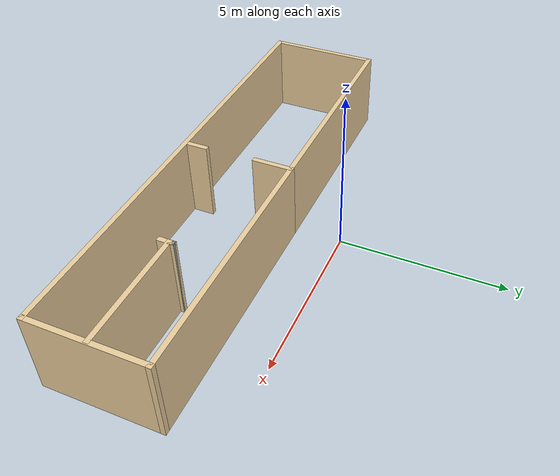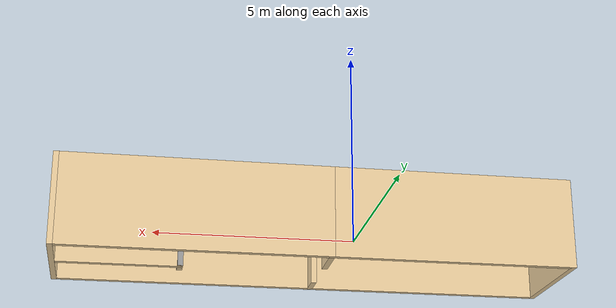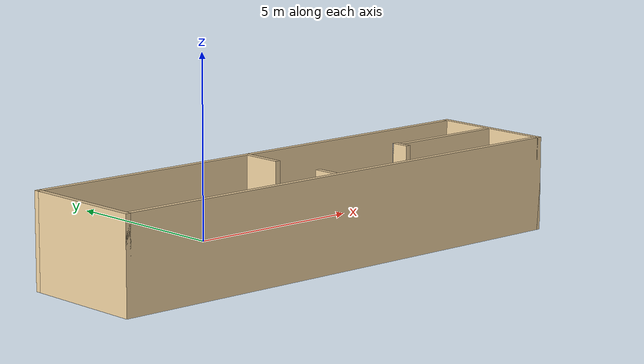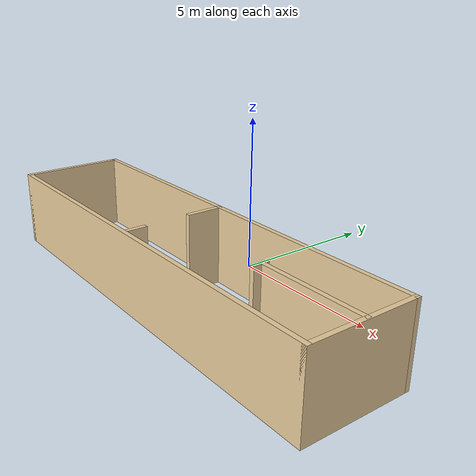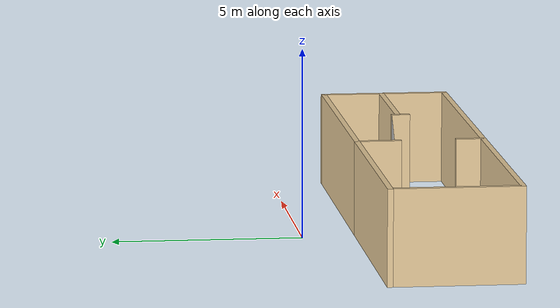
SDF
<?xml version='1.0'?>
<sdf version='1.6'>
  <model name='house_oc'>
    <pose frame=''>0.585 -3.135 0 0 -0 0</pose>
    <link name='Wall_0'>
      <collision name='Wall_0_Collision'>
        <geometry>
          <box>
            <size>6.75 0.15 2.5</size>
          </box>
        </geometry>
        <pose frame=''>0 0 1.25 0 -0 0</pose>
      </collision>
      <visual name='Wall_0_Visual'>
        <pose frame=''>0 0 1.25 0 -0 0</pose>
        <geometry>
          <box>
            <size>6.75 0.15 2.5</size>
          </box>
        </geometry>
        <material>
          <script>
            <uri>file://media/materials/scripts/gazebo.material</uri>
            <name>Gazebo/Grey</name>
          </script>
          <ambient>0.921569 0.807843 0.615686 1</ambient>
        </material>
        <meta>
          <layer>0</layer>
        </meta>
      </visual>
      <pose frame=''>-3.625 1.675 0 0 -0 3.14159</pose>
    </link>
    <link name='Wall_1'>
      <collision name='Wall_1_Collision'>
        <geometry>
          <box>
            <size>3.5 0.15 2.5</size>
          </box>
        </geometry>
        <pose frame=''>0 0 1.25 0 -0 0</pose>
      </collision>
      <visual name='Wall_1_Visual'>
        <pose frame=''>0 0 1.25 0 -0 0</pose>
        <geometry>
          <box>
            <size>3.5 0.15 2.5</size>
          </box>
        </geometry>
        <material>
          <script>
            <uri>file://media/materials/scripts/gazebo.material</uri>
            <name>Gazebo/Grey</name>
          </script>
          <ambient>0.921569 0.807843 0.615686 1</ambient>
        </material>
        <meta>
          <layer>0</layer>
        </meta>
      </visual>
      <pose frame=''>-6.925 0 0 0 -0 -1.5708</pose>
    </link>
    <link name='Wall_11'>
      <collision name='Wall_11_Collision'>
        <geometry>
          <box>
            <size>3.5 0.15 2.5</size>
          </box>
        </geometry>
        <pose frame=''>0 0 1.25 0 -0 0</pose>
      </collision>
      <visual name='Wall_11_Visual'>
        <pose frame=''>0 0 1.25 0 -0 0</pose>
        <geometry>
          <box>
            <size>3.5 0.15 2.5</size>
          </box>
        </geometry>
        <material>
          <script>
            <uri>file://media/materials/scripts/gazebo.material</uri>
            <name>Gazebo/Grey</name>
          </script>
          <ambient>0.921569 0.807843 0.615686 1</ambient>
        </material>
        <meta>
          <layer>0</layer>
        </meta>
      </visual>
      <pose frame=''>5.22 0.075 0 0 -0 3.14159</pose>
    </link>
    <link name='Wall_12'>
      <collision name='Wall_12_Collision'>
        <geometry>
          <box>
            <size>0.25 0.15 2.5</size>
          </box>
        </geometry>
        <pose frame=''>0 0 1.25 0 -0 0</pose>
      </collision>
      <visual name='Wall_12_Visual'>
        <pose frame=''>0 0 1.25 0 -0 0</pose>
        <geometry>
          <box>
            <size>0.25 0.15 2.5</size>
          </box>
        </geometry>
        <material>
          <script>
            <uri>file://media/materials/scripts/gazebo.material</uri>
            <name>Gazebo/Grey</name>
          </script>
          <ambient>1 1 1 1</ambient>
        </material>
        <meta>
          <layer>0</layer>
        </meta>
      </visual>
      <pose frame=''>3.545 0.125 0 0 -0 1.5708</pose>
    </link>
    <link name='Wall_13'>
      <collision name='Wall_13_Collision'>
        <geometry>
          <box>
            <size>0.5 0.15 2.5</size>
          </box>
        </geometry>
        <pose frame=''>0 0 1.25 0 -0 0</pose>
      </collision>
      <visual name='Wall_13_Visual'>
        <pose frame=''>0 0 1.25 0 -0 0</pose>
        <geometry>
          <box>
            <size>0.5 0.15 2.5</size>
          </box>
        </geometry>
        <material>
          <script>
            <uri>file://media/materials/scripts/gazebo.material</uri>
            <name>Gazebo/Grey</name>
          </script>
          <ambient>0.921569 0.807843 0.615686 1</ambient>
        </material>
        <meta>
          <layer>0</layer>
        </meta>
      </visual>
      <pose frame=''>3.545 0 0 0 -0 -1.5708</pose>
    </link>
    <link name='Wall_2'>
      <collision name='Wall_2_Collision'>
        <geometry>
          <box>
            <size>14 0.15 2.5</size>
          </box>
        </geometry>
        <pose frame=''>0 0 1.25 0 -0 0</pose>
      </collision>
      <visual name='Wall_2_Visual'>
        <pose frame=''>0 0 1.25 0 -0 0</pose>
        <geometry>
          <box>
            <size>14 0.15 2.5</size>
          </box>
        </geometry>
        <material>
          <script>
            <uri>file://media/materials/scripts/gazebo.material</uri>
            <name>Gazebo/Grey</name>
          </script>
          <ambient>0.921569 0.807843 0.615686 1</ambient>
        </material>
        <meta>
          <layer>0</layer>
        </meta>
      </visual>
      <pose frame=''>-0 -1.675 0 0 -0 0</pose>
    </link>
    <link name='Wall_3'>
      <collision name='Wall_3_Collision'>
        <geometry>
          <box>
            <size>3.5 0.15 2.5</size>
          </box>
        </geometry>
        <pose frame=''>0 0 1.25 0 -0 0</pose>
      </collision>
      <visual name='Wall_3_Visual'>
        <pose frame=''>0 0 1.25 0 -0 0</pose>
        <geometry>
          <box>
            <size>3.5 0.15 2.5</size>
          </box>
        </geometry>
        <material>
          <script>
            <uri>file://media/materials/scripts/gazebo.material</uri>
            <name>Gazebo/Grey</name>
          </script>
          <ambient>0.921569 0.807843 0.615686 1</ambient>
        </material>
        <meta>
          <layer>0</layer>
        </meta>
      </visual>
      <pose frame=''>6.925 0 0 0 -0 1.5708</pose>
    </link>
    <link name='Wall_4'>
      <collision name='Wall_4_Collision'>
        <geometry>
          <box>
            <size>7.4 0.15 2.5</size>
          </box>
        </geometry>
        <pose frame=''>0 0 1.25 0 -0 0</pose>
      </collision>
      <visual name='Wall_4_Visual'>
        <pose frame=''>0 0 1.25 0 -0 0</pose>
        <geometry>
          <box>
            <size>7.4 0.15 2.5</size>
          </box>
        </geometry>
        <material>
          <script>
            <uri>file://media/materials/scripts/gazebo.material</uri>
            <name>Gazebo/Grey</name>
          </script>
          <ambient>0.921569 0.807843 0.615686 1</ambient>
        </material>
        <meta>
          <layer>0</layer>
        </meta>
      </visual>
      <pose frame=''>3.3 1.675 0 0 -0 3.14159</pose>
    </link>
    <link name='Wall_5'>
      <collision name='Wall_5_Collision'>
        <geometry>
          <box>
            <size>1.25 0.15 2.5</size>
          </box>
        </geometry>
        <pose frame=''>0 0 1.25 0 -0 0</pose>
      </collision>
      <visual name='Wall_5_Visual'>
        <pose frame=''>0 0 1.25 0 -0 0</pose>
        <geometry>
          <box>
            <size>1.25 0.15 2.5</size>
          </box>
        </geometry>
        <material>
          <script>
            <uri>file://media/materials/scripts/gazebo.material</uri>
            <name>Gazebo/Grey</name>
          </script>
          <ambient>0.921569 0.807843 0.615686 1</ambient>
        </material>
        <meta>
          <layer>0</layer>
        </meta>
      </visual>
      <pose frame=''>-0.325 1.125 0 0 -0 -1.5708</pose>
    </link>
    <link name='Wall_8'>
      <collision name='Wall_8_Collision'>
        <geometry>
          <box>
            <size>0.75 0.15 2.5</size>
          </box>
        </geometry>
        <pose frame=''>0 0 1.25 0 -0 0</pose>
      </collision>
      <visual name='Wall_8_Visual'>
        <pose frame=''>0 0 1.25 0 -0 0</pose>
        <geometry>
          <box>
            <size>0.75 0.15 2.5</size>
          </box>
        </geometry>
        <material>
          <script>
            <uri>file://media/materials/scripts/gazebo.material</uri>
            <name>Gazebo/Grey</name>
          </script>
          <ambient>0.921569 0.807843 0.615686 1</ambient>
        </material>
        <meta>
          <layer>0</layer>
        </meta>
      </visual>
      <pose frame=''>-0.275 -1.325 0 0 -0 1.5708</pose>
    </link>
    <static>1</static>
  </model>
</sdf>
